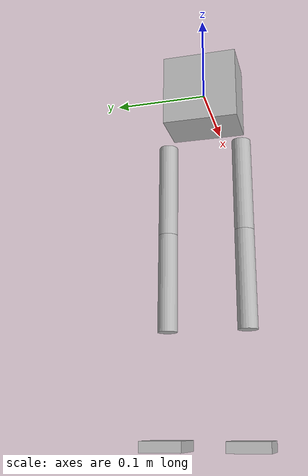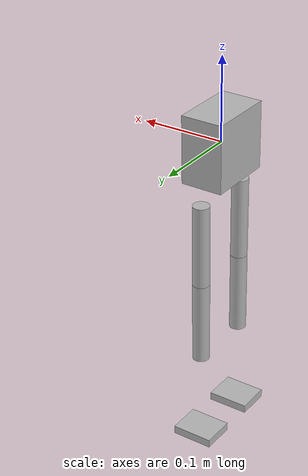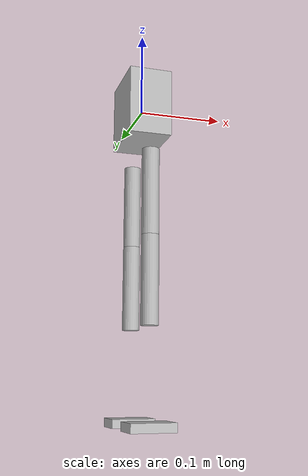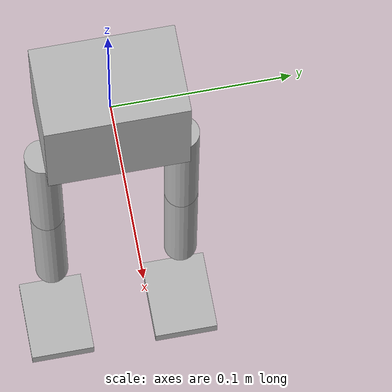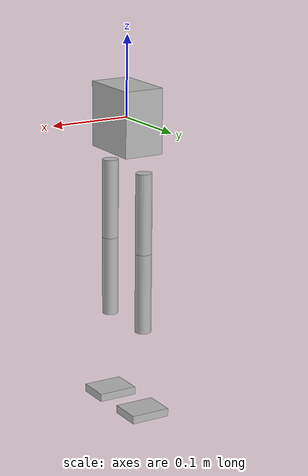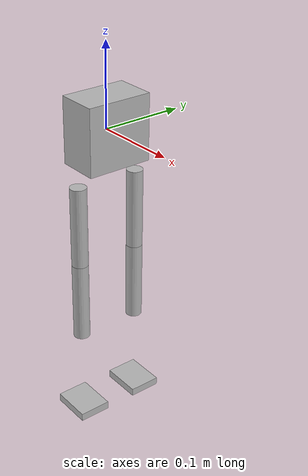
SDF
<sdf version='1.7'>
  <model name='bipedal_robot'>
    <link name='dummy'>
      <inertial>
        <pose>0 0 0 0 -0 0</pose>
        <mass>0.16</mass>
        <inertia>
          <ixx>0.1</ixx>
          <ixy>0</ixy>
          <ixz>0</ixz>
          <iyy>0.1</iyy>
          <iyz>0</iyz>
          <izz>0.1</izz>
        </inertia>
      </inertial>
      <collision name='dummy_fixed_joint_lump__base_link_collision'>
        <pose>0 0 0 0 -0 0</pose>
        <geometry>
          <box>
            <size>0.05 0.08 0.08</size>
          </box>
        </geometry>
      </collision>
      <visual name='dummy_fixed_joint_lump__base_link_visual'>
        <pose>0 0 0 0 -0 0</pose>
        <geometry>
          <box>
            <size>0.05 0.08 0.08</size>
          </box>
        </geometry>
      </visual>
    </link>
    <joint name='left_hip_joint1' type='revolute'>
      <pose relative_to='dummy'>0 0.04 -0.03 0 -0 0</pose>
      <parent>dummy</parent>
      <child>left_hip_link</child>
      <axis>
        <xyz>1 0 0</xyz>
        <limit>
          <lower>-1.57</lower>
          <upper>1.57</upper>
          <effort>20</effort>
          <velocity>1.5</velocity>
        </limit>
        <dynamics>
          <damping>0.5</damping>
          <friction>0.3</friction>
          <spring_reference>0</spring_reference>
          <spring_stiffness>0</spring_stiffness>
        </dynamics>
      </axis>
    </joint>
    <link name='left_hip_link'>
      <pose relative_to='left_hip_joint1'>0 0 0 0 -0 0</pose>
      <inertial>
        <pose>0 0 0 0 -0 0</pose>
        <mass>0.01</mass>
        <inertia>
          <ixx>0.1</ixx>
          <ixy>0</ixy>
          <ixz>0</ixz>
          <iyy>0.1</iyy>
          <iyz>0</iyz>
          <izz>0.1</izz>
        </inertia>
      </inertial>
    </link>
    <joint name='left_hip_joint2' type='revolute'>
      <pose relative_to='left_hip_link'>0 0 -0.03 0 -0 0</pose>
      <parent>left_hip_link</parent>
      <child>left_thigh</child>
      <axis>
        <xyz>0 1 0</xyz>
        <limit>
          <lower>-1.57</lower>
          <upper>1.57</upper>
          <effort>20</effort>
          <velocity>1.5</velocity>
        </limit>
        <dynamics>
          <damping>0.5</damping>
          <friction>0.3</friction>
          <spring_reference>0</spring_reference>
          <spring_stiffness>0</spring_stiffness>
        </dynamics>
      </axis>
    </joint>
    <link name='left_thigh'>
      <pose relative_to='left_hip_joint2'>0 0 0 0 -0 0</pose>
      <inertial>
        <pose>0 0 0 0 -0 0</pose>
        <mass>0.16</mass>
        <inertia>
          <ixx>0.1</ixx>
          <ixy>0</ixy>
          <ixz>0</ixz>
          <iyy>0.1</iyy>
          <iyz>0</iyz>
          <izz>0.1</izz>
        </inertia>
      </inertial>
      <collision name='left_thigh_collision_collision'>
        <pose>0 0 -0.05 0 -0 0</pose>
        <geometry>
          <cylinder>
            <length>0.1</length>
            <radius>0.01</radius>
          </cylinder>
        </geometry>
      </collision>
      <visual name='left_thigh_visual'>
        <pose>0 0 -0.05 0 -0 0</pose>
        <geometry>
          <cylinder>
            <length>0.1</length>
            <radius>0.01</radius>
          </cylinder>
        </geometry>
      </visual>
    </link>
    <joint name='left_knee_joint' type='revolute'>
      <pose relative_to='left_thigh'>0 0 -0.1 0 -0 0</pose>
      <parent>left_thigh</parent>
      <child>left_shin</child>
      <axis>
        <xyz>0 1 0</xyz>
        <limit>
          <lower>0</lower>
          <upper>1.57</upper>
          <effort>20</effort>
          <velocity>1</velocity>
        </limit>
        <dynamics>
          <damping>0.5</damping>
          <friction>0.3</friction>
          <spring_reference>0</spring_reference>
          <spring_stiffness>0</spring_stiffness>
        </dynamics>
      </axis>
    </joint>
    <link name='left_shin'>
      <pose relative_to='left_knee_joint'>0 0 0 0 -0 0</pose>
      <inertial>
        <pose>0 0 0 0 -0 0</pose>
        <mass>0.16</mass>
        <inertia>
          <ixx>0.1</ixx>
          <ixy>0</ixy>
          <ixz>0</ixz>
          <iyy>0.1</iyy>
          <iyz>0</iyz>
          <izz>0.1</izz>
        </inertia>
      </inertial>
      <collision name='left_shin_collision_collision'>
        <pose>0 0 -0.05 0 -0 0</pose>
        <geometry>
          <cylinder>
            <length>0.1</length>
            <radius>0.01</radius>
          </cylinder>
        </geometry>
      </collision>
      <visual name='left_shin_visual'>
        <pose>0 0 -0.05 0 -0 0</pose>
        <geometry>
          <cylinder>
            <length>0.1</length>
            <radius>0.01</radius>
          </cylinder>
        </geometry>
      </visual>
    </link>
    <joint name='left_ankle_joint1' type='revolute'>
      <pose relative_to='left_shin'>0 0 -0.1 0 -0 0</pose>
      <parent>left_shin</parent>
      <child>left_ankle_link</child>
      <axis>
        <xyz>0 1 0</xyz>
        <limit>
          <lower>-1.57</lower>
          <upper>1.57</upper>
          <effort>20</effort>
          <velocity>1</velocity>
        </limit>
        <dynamics>
          <damping>0.5</damping>
          <friction>0.3</friction>
          <spring_reference>0</spring_reference>
          <spring_stiffness>0</spring_stiffness>
        </dynamics>
      </axis>
    </joint>
    <link name='left_ankle_link'>
      <pose relative_to='left_ankle_joint1'>0 0 0 0 -0 0</pose>
      <inertial>
        <pose>0 0 0 0 -0 0</pose>
        <mass>0.01</mass>
        <inertia>
          <ixx>0.1</ixx>
          <ixy>0</ixy>
          <ixz>0</ixz>
          <iyy>0.1</iyy>
          <iyz>0</iyz>
          <izz>0.1</izz>
        </inertia>
      </inertial>
    </link>
    <joint name='left_ankle_joint2' type='revolute'>
      <pose relative_to='left_ankle_link'>0 0 -0.1 0 -0 0</pose>
      <parent>left_ankle_link</parent>
      <child>left_foot</child>
      <axis>
        <xyz>1 0 0</xyz>
        <limit>
          <lower>-1.57</lower>
          <upper>1.57</upper>
          <effort>20</effort>
          <velocity>1</velocity>
        </limit>
        <dynamics>
          <damping>0.5</damping>
          <friction>0.3</friction>
          <spring_reference>0</spring_reference>
          <spring_stiffness>0</spring_stiffness>
        </dynamics>
      </axis>
    </joint>
    <link name='left_foot'>
      <pose relative_to='left_ankle_joint2'>0 0 0 0 -0 0</pose>
      <inertial>
        <pose>0 0 0 0 -0 0</pose>
        <mass>0.02</mass>
        <inertia>
          <ixx>0.1</ixx>
          <ixy>0</ixy>
          <ixz>0</ixz>
          <iyy>0.1</iyy>
          <iyz>0</iyz>
          <izz>0.1</izz>
        </inertia>
      </inertial>
      <collision name='left_foot_collision_collision'>
        <pose>0 0 -0.005 0 -0 0</pose>
        <geometry>
          <box>
            <size>0.05 0.04 0.01</size>
          </box>
        </geometry>
      </collision>
      <visual name='left_foot_visual'>
        <pose>0 0 -0.005 0 -0 0</pose>
        <geometry>
          <box>
            <size>0.05 0.04 0.01</size>
          </box>
        </geometry>
      </visual>
    </link>
    <joint name='right_hip_joint1' type='revolute'>
      <pose relative_to='dummy'>0 -0.04 -0.03 0 -0 0</pose>
      <parent>dummy</parent>
      <child>right_hip_link</child>
      <axis>
        <xyz>1 0 0</xyz>
        <limit>
          <lower>-1.57</lower>
          <upper>1.57</upper>
          <effort>20</effort>
          <velocity>1.5</velocity>
        </limit>
        <dynamics>
          <damping>0.5</damping>
          <friction>0.3</friction>
          <spring_reference>0</spring_reference>
          <spring_stiffness>0</spring_stiffness>
        </dynamics>
      </axis>
    </joint>
    <link name='right_hip_link'>
      <pose relative_to='right_hip_joint1'>0 0 0 0 -0 0</pose>
      <inertial>
        <pose>0 0 0 0 -0 0</pose>
        <mass>0.01</mass>
        <inertia>
          <ixx>0.1</ixx>
          <ixy>0</ixy>
          <ixz>0</ixz>
          <iyy>0.1</iyy>
          <iyz>0</iyz>
          <izz>0.1</izz>
        </inertia>
      </inertial>
    </link>
    <joint name='right_hip_joint2' type='revolute'>
      <pose relative_to='right_hip_link'>0 0 -0.03 0 -0 0</pose>
      <parent>right_hip_link</parent>
      <child>right_thigh</child>
      <axis>
        <xyz>0 1 0</xyz>
        <limit>
          <lower>-1.57</lower>
          <upper>1.57</upper>
          <effort>20</effort>
          <velocity>1.5</velocity>
        </limit>
        <dynamics>
          <damping>0.5</damping>
          <friction>0.3</friction>
          <spring_reference>0</spring_reference>
          <spring_stiffness>0</spring_stiffness>
        </dynamics>
      </axis>
    </joint>
    <link name='right_thigh'>
      <pose relative_to='right_hip_joint2'>0 0 0 0 -0 0</pose>
      <inertial>
        <pose>0 0 0 0 -0 0</pose>
        <mass>0.16</mass>
        <inertia>
          <ixx>0.1</ixx>
          <ixy>0</ixy>
          <ixz>0</ixz>
          <iyy>0.1</iyy>
          <iyz>0</iyz>
          <izz>0.1</izz>
        </inertia>
      </inertial>
      <collision name='right_thigh_collision_collision'>
        <pose>0 0 -0.05 0 -0 0</pose>
        <geometry>
          <cylinder>
            <length>0.1</length>
            <radius>0.01</radius>
          </cylinder>
        </geometry>
      </collision>
      <visual name='right_thigh_visual'>
        <pose>0 0 -0.05 0 -0 0</pose>
        <geometry>
          <cylinder>
            <length>0.1</length>
            <radius>0.01</radius>
          </cylinder>
        </geometry>
      </visual>
    </link>
    <joint name='right_knee_joint' type='revolute'>
      <pose relative_to='right_thigh'>0 0 -0.1 0 -0 0</pose>
      <parent>right_thigh</parent>
      <child>right_shin</child>
      <axis>
        <xyz>0 1 0</xyz>
        <limit>
          <lower>0</lower>
          <upper>1.57</upper>
          <effort>20</effort>
          <velocity>1</velocity>
        </limit>
        <dynamics>
          <damping>0.5</damping>
          <friction>0.3</friction>
          <spring_reference>0</spring_reference>
          <spring_stiffness>0</spring_stiffness>
        </dynamics>
      </axis>
    </joint>
    <link name='right_shin'>
      <pose relative_to='right_knee_joint'>0 0 0 0 -0 0</pose>
      <inertial>
        <pose>0 0 0 0 -0 0</pose>
        <mass>0.16</mass>
        <inertia>
          <ixx>0.1</ixx>
          <ixy>0</ixy>
          <ixz>0</ixz>
          <iyy>0.1</iyy>
          <iyz>0</iyz>
          <izz>0.1</izz>
        </inertia>
      </inertial>
      <collision name='right_shin_collision_collision'>
        <pose>0 0 -0.05 0 -0 0</pose>
        <geometry>
          <cylinder>
            <length>0.1</length>
            <radius>0.01</radius>
          </cylinder>
        </geometry>
      </collision>
      <visual name='right_shin_visual'>
        <pose>0 0 -0.05 0 -0 0</pose>
        <geometry>
          <cylinder>
            <length>0.1</length>
            <radius>0.01</radius>
          </cylinder>
        </geometry>
      </visual>
    </link>
    <joint name='right_ankle_joint1' type='revolute'>
      <pose relative_to='right_shin'>0 0 -0.1 0 -0 0</pose>
      <parent>right_shin</parent>
      <child>right_ankle_link</child>
      <axis>
        <xyz>0 1 0</xyz>
        <limit>
          <lower>-1.57</lower>
          <upper>1.57</upper>
          <effort>20</effort>
          <velocity>1</velocity>
        </limit>
        <dynamics>
          <damping>0.5</damping>
          <friction>0.3</friction>
          <spring_reference>0</spring_reference>
          <spring_stiffness>0</spring_stiffness>
        </dynamics>
      </axis>
    </joint>
    <link name='right_ankle_link'>
      <pose relative_to='right_ankle_joint1'>0 0 0 0 -0 0</pose>
      <inertial>
        <pose>0 0 0 0 -0 0</pose>
        <mass>0.01</mass>
        <inertia>
          <ixx>0.1</ixx>
          <ixy>0</ixy>
          <ixz>0</ixz>
          <iyy>0.1</iyy>
          <iyz>0</iyz>
          <izz>0.1</izz>
        </inertia>
      </inertial>
    </link>
    <joint name='right_ankle_joint2' type='revolute'>
      <pose relative_to='right_ankle_link'>0 0 -0.1 0 -0 0</pose>
      <parent>right_ankle_link</parent>
      <child>right_foot</child>
      <axis>
        <xyz>1 0 0</xyz>
        <limit>
          <lower>-1.57</lower>
          <upper>1.57</upper>
          <effort>20</effort>
          <velocity>1</velocity>
        </limit>
        <dynamics>
          <damping>0.5</damping>
          <friction>0.3</friction>
          <spring_reference>0</spring_reference>
          <spring_stiffness>0</spring_stiffness>
        </dynamics>
      </axis>
    </joint>
    <link name='right_foot'>
      <pose relative_to='right_ankle_joint2'>0 0 0 0 -0 0</pose>
      <inertial>
        <pose>0 0 0 0 -0 0</pose>
        <mass>0.02</mass>
        <inertia>
          <ixx>0.1</ixx>
          <ixy>0</ixy>
          <ixz>0</ixz>
          <iyy>0.1</iyy>
          <iyz>0</iyz>
          <izz>0.1</izz>
        </inertia>
      </inertial>
      <collision name='right_foot_collision_collision'>
        <pose>0 0 -0.005 0 -0 0</pose>
        <geometry>
          <box>
            <size>0.05 0.04 0.01</size>
          </box>
        </geometry>
      </collision>
      <visual name='right_foot_visual'>
        <pose>0 0 -0.005 0 -0 0</pose>
        <geometry>
          <box>
            <size>0.05 0.04 0.01</size>
          </box>
        </geometry>
      </visual>
    </link>
    <static>0</static>
    <plugin name='gazebo_ros_control' filename='libgazebo_ros_control.so'/>
  </model>
</sdf>
